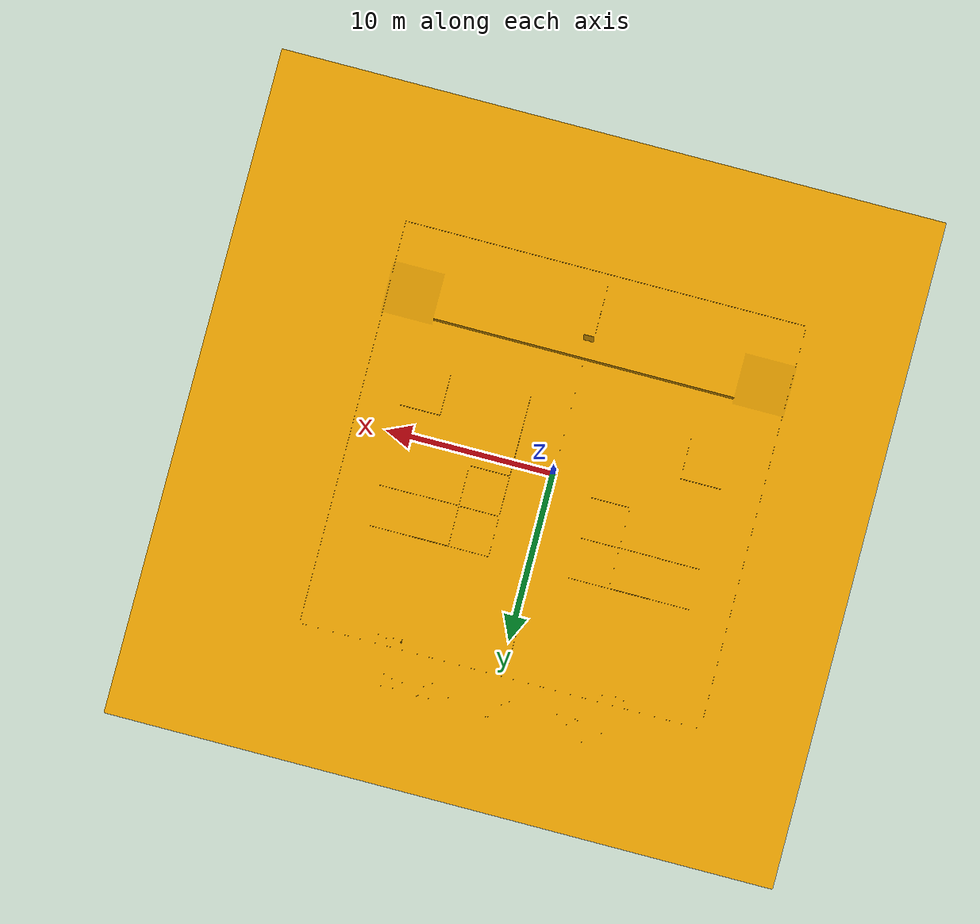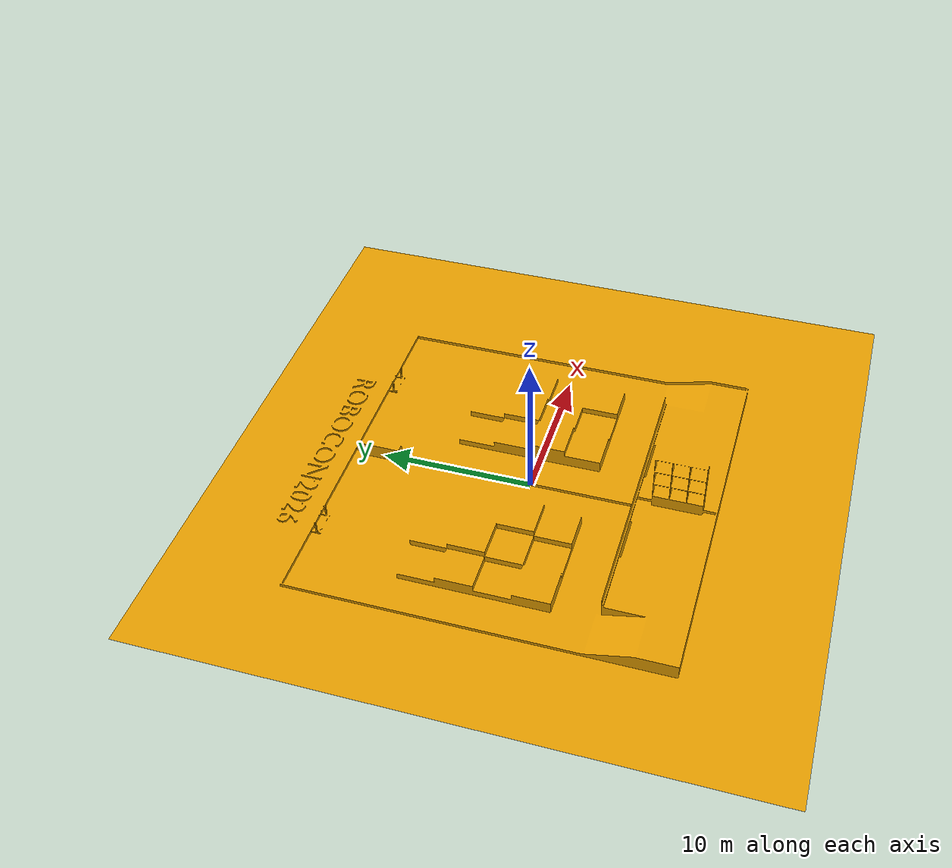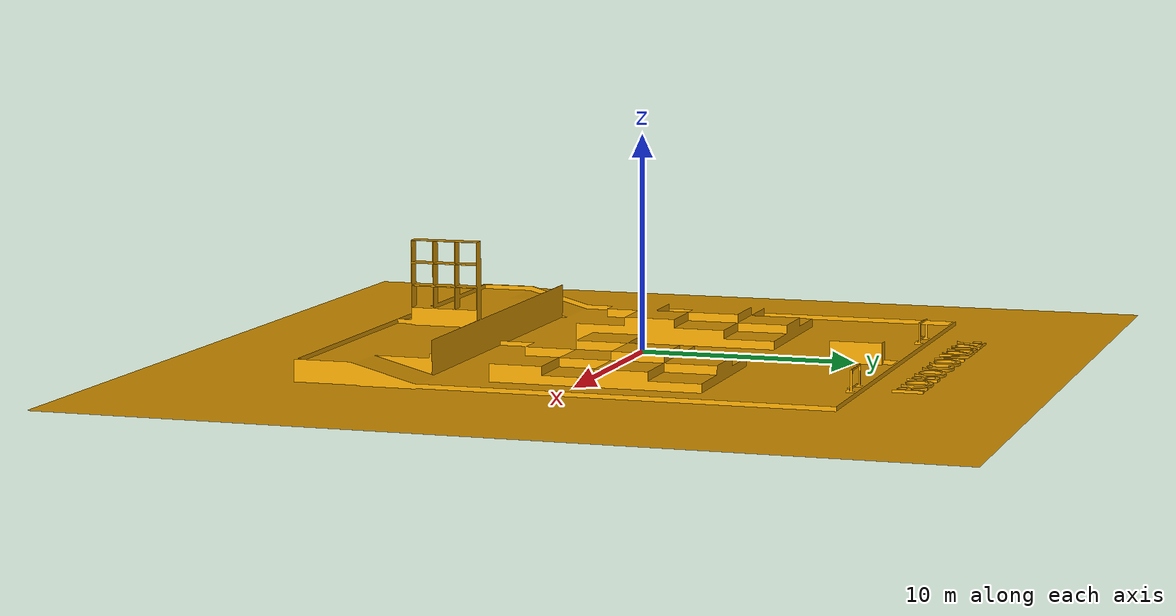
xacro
<?xml version="1.0"?>
<robot name="robocon2026_map">

  <!--        主链接          -->
  <link name="map_link">

    <!--        可视化部分       -->
    <visual>
      <origin xyz="0 0 0" rpy="0 0 0"/>
      <geometry>
        <mesh filename="$(find r2myrobot_gazebo)/meshes/robocon2026.obj" scale="2 2 2"/>
      </geometry>
    </visual>

    <!--        碰撞部分         -->
    <collision>
      <origin xyz="0 0 0" rpy="0 0 0"/>
      <geometry>
        <mesh filename="$(find r2myrobot_gazebo)/meshes/robocon2026.obj" scale="2 2 2"/>
      </geometry>
    </collision>

    <!--  惯性（超级重量配置）    -->
    <inertial>
      <origin xyz="0 0 0" rpy="0 0 0"/>
      <mass value="1000000.0"/>  <!-- 超级重量：100万kg -->
      <inertia
        ixx="1e10" ixy="0" ixz="0"
        iyy="1e10" iyz="0"
        izz="1e10"/>  <!-- 超大惯性矩，防止旋转 -->
    </inertial>

  </link>

  <!--     Gazebo 专用设置     -->
  <gazebo reference="map_link">
    <!-- 超级刚体配置 -->
    <mu1>0.8</mu1>     <!-- 极高摩擦系数 -->
    <mu2>0.8</mu2>
    <kp>1e7</kp>         <!-- 极高刚度（接触刚度） -->
    <kd>1e2</kd>          <!-- 极高阻尼 -->
    <!-- 额外的刚体属性 -->
    <maxVel>0.0</maxVel>         <!-- 最大速度为0 -->
    <minDepth>0.0001</minDepth>  <!-- 最小穿透深度 -->

    <!-- 确保完全不可移动 -->
    <turnGravityOff>true</turnGravityOff>
  </gazebo>

</robot>
